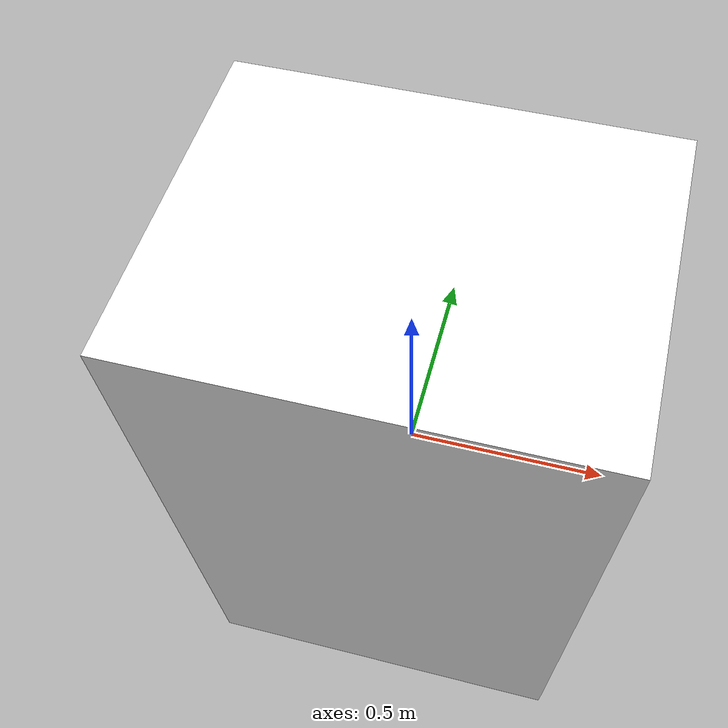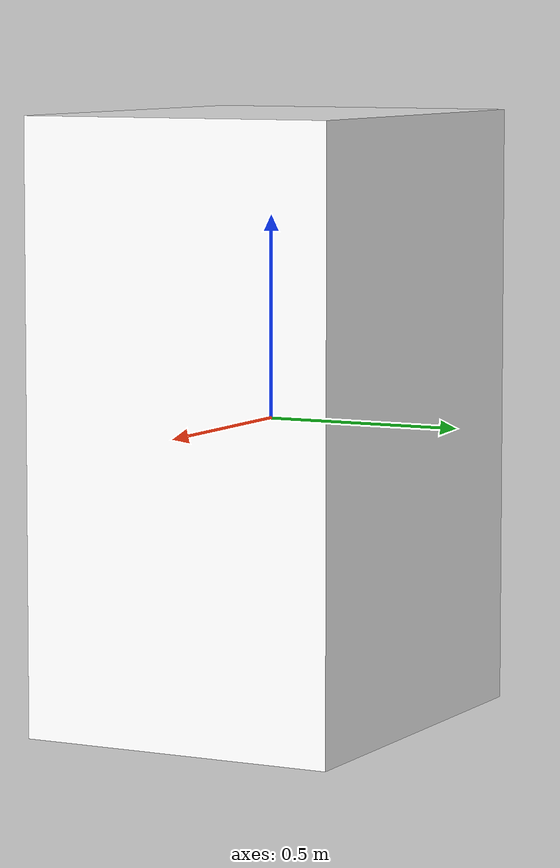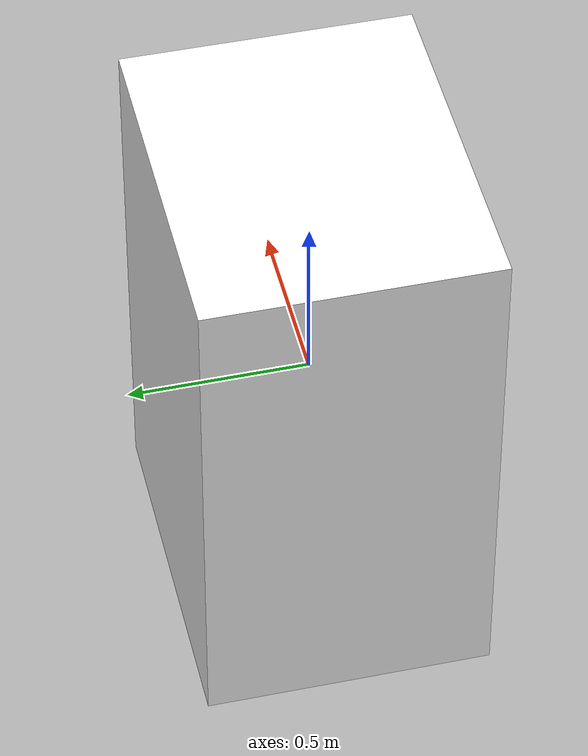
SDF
<?xml version="1.0" ?>
<sdf version="1.9">
  <model name="mushroom_incubator">
    <!-- Base link (incubator chamber) -->
    <link name="base_link">
      <visual name="visual">
        <geometry>
          <box>
            <size>1.0 0.8 1.5</size>
          </box>
        </geometry>
        <material>
          <ambient>1 1 1 1</ambient>
          <diffuse>1 1 1 1</diffuse>
        </material>
      </visual>
      <collision name="collision">
        <geometry>
          <box>
            <size>1.0 0.8 1.5</size>
          </box>
        </geometry>
      </collision>
      <inertial>
        <mass>50.0</mass>
        <inertia>
          <ixx>16.67</ixx>
          <ixy>0.0</ixy>
          <ixz>0.0</ixz>
          <iyy>16.67</iyy>
          <iyz>0.0</iyz>
          <izz>16.67</izz>
        </inertia>
      </inertial>
      <!-- Add thermal properties to the base_link -->
      <thermal_properties>
        <thermal_conductivity>0.024</thermal_conductivity>
        <specific_heat_capacity>1200.0</specific_heat_capacity>
        <density>50.0</density>
        <emissivity>0.9</emissivity>
        <temperature>293.15</temperature>
      </thermal_properties>
    </link>

    <!-- Heater element -->
    <link name="heater">
      <pose>0 0 -0.7 0 0 0</pose>
      <visual name="visual">
        <geometry>
          <box>
            <size>0.6 0.4 0.02</size>
          </box>
        </geometry>
        <material>
          <ambient>0.8 0.2 0.2 1</ambient>
          <diffuse>0.8 0.2 0.2 1</diffuse>
        </material>
      </visual>
      <collision name="collision">
        <geometry>
          <box>
            <size>0.6 0.4 0.02</size>
          </box>
        </geometry>
      </collision>
      <thermal_properties>
        <thermal_conductivity>237.0</thermal_conductivity>
        <specific_heat_capacity>900.0</specific_heat_capacity>
        <density>2700.0</density>
        <emissivity>0.95</emissivity>
        <temperature>293.15</temperature>
      </thermal_properties>
    </link>

    <joint name="heater_joint" type="fixed">
      <parent>base_link</parent>
      <child>heater</child>
    </joint>

    <!-- Temperature sensor -->
    <link name="temp_sensor">
      <pose>0 0 0.5 0 0 0</pose>
      <visual name="visual">
        <geometry>
          <cylinder>
            <radius>0.02</radius>
            <length>0.05</length>
          </cylinder>
        </geometry>
        <material>
          <ambient>0.5 0.5 0.5 1</ambient>
          <diffuse>0.5 0.5 0.5 1</diffuse>
        </material>
      </visual>
      <sensor name="thermometer" type="thermal">
        <always_on>1</always_on>
        <update_rate>10</update_rate>
        <thermal>
          <temperature>true</temperature>
        </thermal>
      </sensor>
    </link>

    <joint name="temp_sensor_joint" type="fixed">
      <parent>base_link</parent>
      <child>temp_sensor</child>
    </joint>

    <!-- Thermal source plugin for the heater -->
    <plugin
        filename="ignition-gazebo-thermal-source-system"
        name="ignition::gazebo::systems::ThermalSource">
      <link_name>heater</link_name>
      <power>500.0</power>
      <temperature_topic>/model/mushroom_incubator/heater/power</temperature_topic>
    </plugin>

    <!-- Thermal sensor plugin -->
    <plugin
        filename="ignition-gazebo-thermal-sensor-system"
        name="ignition::gazebo::systems::ThermalSensor">
      <link_name>temp_sensor</link_name>
      <topic>/model/mushroom_incubator/temperature</topic>
      <update_rate>10.0</update_rate>
    </plugin>
  </model>
</sdf>
